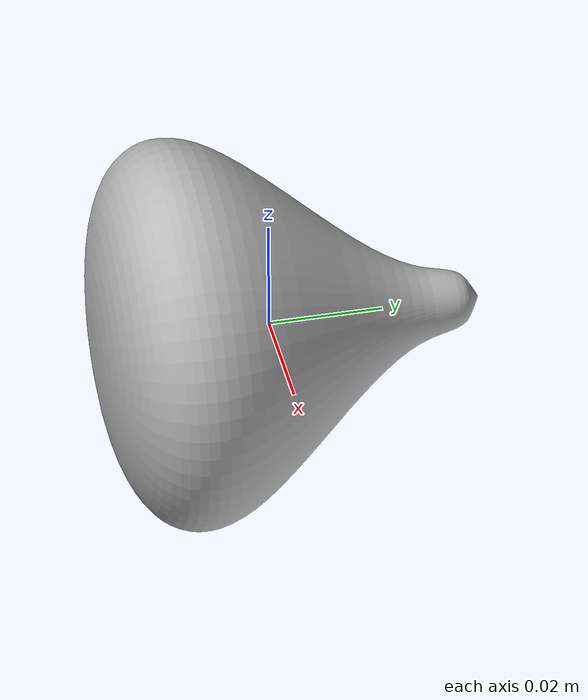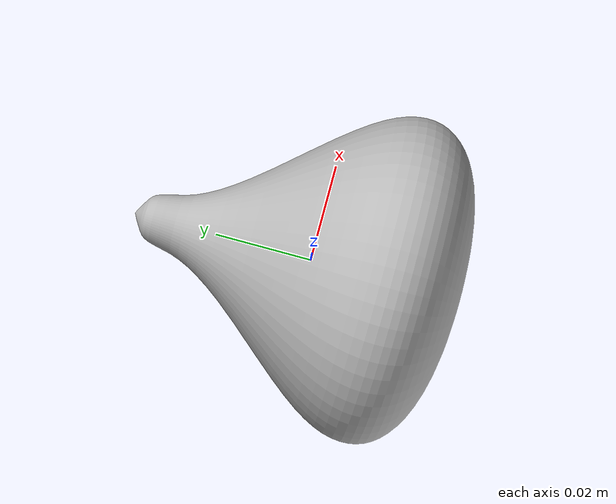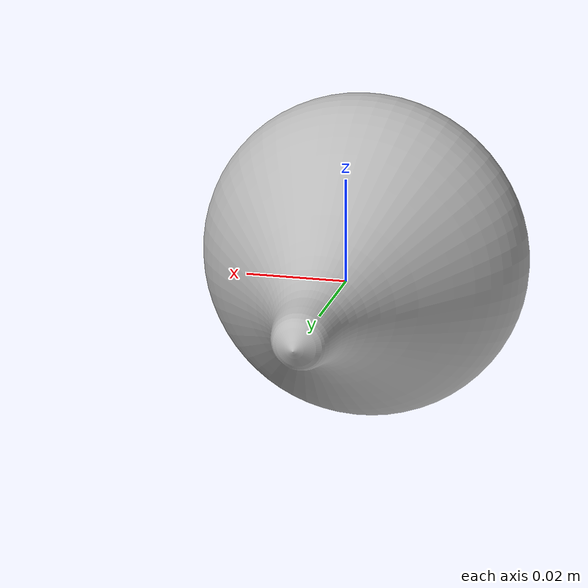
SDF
<?xml version="1.0"?>
<sdf version='1.6'>
  <model name='onion'>
    <link name='base_link'>
      <pose frame=''>0 0 0 0 0 0</pose> <!-- make r = 1.5708 to make them upright -->
      <inertial>
        <pose frame=''>0 0 0 0 0 0</pose>
        <!-- From 0.14kg to 0.005kg -->
        <mass>0.1</mass>
        <inertia>
          <ixx>0.08333</ixx>
          <ixy>0</ixy>
          <ixz>0</ixz>
          <iyy>0.08333</iyy>
          <iyz>0</iyz>
          <izz>0.07780</izz>
        </inertia>
      </inertial>
      <collision name='base_link_fixed_joint_lump__box_collision_collision'>
        <pose frame=''>0 0 0 0 0 0</pose>
        <geometry>
        <sphere>
               <radius>.0375</radius>
          </sphere>
        </geometry>
      </collision>
      <visual name='base_link_visual'>
        <pose frame=''>0 0 0 0 0 0</pose>
        <geometry>
          <mesh>
            <scale>0.75 0.75 0.75</scale>
            <uri>model://custom_onion.dae</uri>
          </mesh>
        </geometry>
        <material>
          <script>
            <uri>__default__</uri>
            <name>__default__</name>
          </script>
        </material>
      </visual>
      <gravity>1</gravity>
      <velocity_decay/>
      <self_collide>0</self_collide>
    </link>
  </model>
</sdf>
